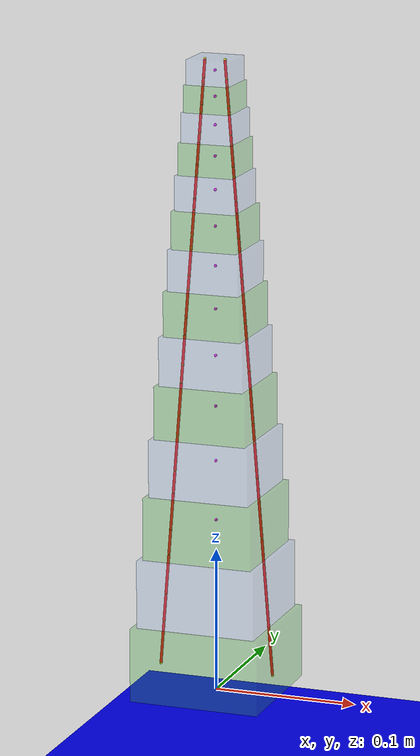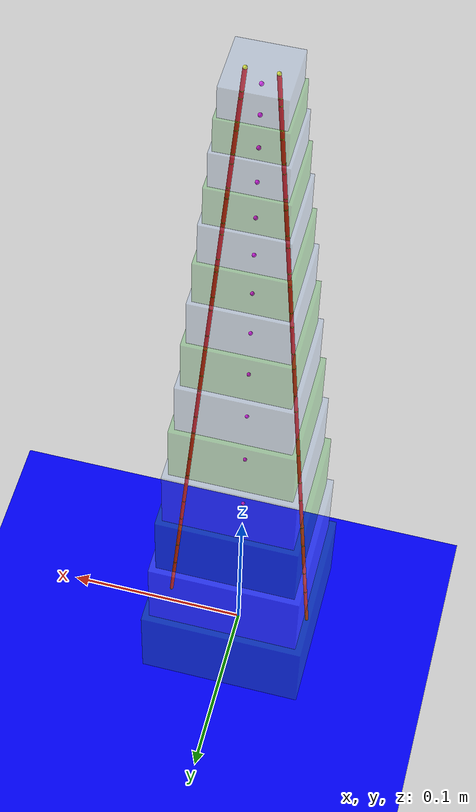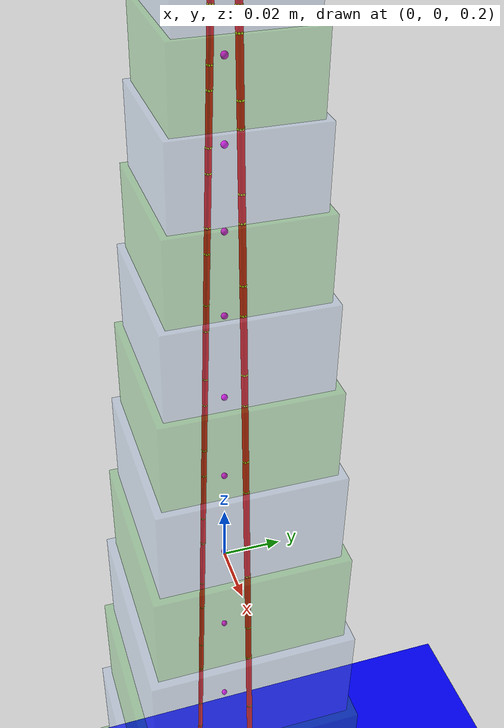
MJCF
<mujoco model="SpiRob demo scene">
  <!-- Rendering-only wrapper: the identified model plus lights, a skybox and a
       ground material, so scripts/render_demo.py produces a readable video
       without touching the tracked model itself. -->
  <include file="spirob_13seg_identified.xml"/>

  <visual>
    <headlight diffuse="0.55 0.55 0.55" ambient="0.35 0.35 0.35" specular="0.15 0.15 0.15"/>
    <rgba haze="0.15 0.25 0.35 1"/>
    <global offwidth="1920" offheight="1080"/>
    <quality shadowsize="4096"/>
  </visual>

  <asset>
    <texture type="skybox" builtin="gradient" rgb1="0.35 0.45 0.58" rgb2="0.08 0.10 0.14"
             width="512" height="3072"/>
  </asset>

  <worldbody>
    <light pos="0.3 -0.6 0.9" dir="-0.3 0.6 -0.9" directional="true"
           diffuse="0.7 0.7 0.7" specular="0.2 0.2 0.2"/>
  </worldbody>
</mujoco>

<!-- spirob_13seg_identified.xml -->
<mujoco model="Spirob">
  <compiler angle="radian"/>

  <option timestep="0.004" impratio="15" cone="elliptic" iterations="20"/>

  <default>
    <joint solreflimit="0.02 0.5" stiffness="0.01" limited="true" range="-24.4496 24.4496" armature="0.01" damping="0.2"/>
  </default>

  <worldbody>
    <body name="base">
      <geom size="2 2 0.1" pos="0 0 -0.053" type="plane" rgba="0 0 1 0.6"/>
      <body name="seg_13">
        <geom name="g_13" size="0.0458798 0.0458798 0.0258984" pos="0 0 0.0258984" type="box" density="1100" rgba="0.2 0.7 0.2 0.3"/>
        <site name="site_imu_13" pos="0 0 0.0258984" size="0.001" rgba="1 0 1 1"/>
        <site name="site_in_13_0" pos="0.0408634 0 0.0142884" size="0.001" rgba="1 1 0 1"/>
        <site name="site_out_13_0" pos="0.0384285 0 0.0448985" size="0.001" rgba="1 1 0 1"/>
        <site name="site_in_13_1" pos="-0.0408634 0 0.0142884" size="0.001" rgba="1 1 0 1"/>
        <site name="site_out_13_1" pos="-0.0384285 0 0.0448985" size="0.001" rgba="1 1 0 1"/>
        <body name="seg_12" pos="0 0 0.0517968">
          <joint name="j_12" pos="0 0 0" axis="0 1 0" solreflimit="0.00729252 4.21066" solimplimit="0.98724 0.968035 0.01336" solreffriction="0.0828541 2.71638" solimpfriction="0.736528 0.919823 0.00627369" stiffness="0.1" range="-0.513643 0.513643" armature="0.0359926" damping="0.0001" frictionloss="9.85227"/>
          <geom name="g_12" size="0.0420991 0.0420991 0.0237643" pos="0 0 0.0237643" type="box" density="1100" rgba="0.6 0.75 0.95 0.3"/>
          <site name="site_imu_12" pos="0 0 0.0237643" size="0.001" rgba="1 0 1 1"/>
          <site name="site_in_12_0" pos="0.0368547 0 0.0128867" size="0.001" rgba="1 1 0 1"/>
          <site name="site_out_12_0" pos="0.0345931 0 0.0413187" size="0.001" rgba="1 1 0 1"/>
          <site name="site_in_12_1" pos="-0.0368547 0 0.0128867" size="0.001" rgba="1 1 0 1"/>
          <site name="site_out_12_1" pos="-0.0345931 0 0.0413187" size="0.001" rgba="1 1 0 1"/>
          <body name="seg_11" pos="0 0 0.0475285">
            <joint name="j_11" pos="0 0 0" axis="0 1 0" solreflimit="0.00729252 4.21066" solimplimit="0.98724 0.968035 0.01336" solreffriction="0.0828541 2.71638" solimpfriction="0.736528 0.919823 0.00627369" stiffness="0.1" range="-0.513643 0.513643" armature="0.0359926" damping="2.56115" frictionloss="9.41908"/>
            <geom name="g_11" size="0.03863 0.03863 0.021806" pos="0 0 0.021806" type="box" density="1100" rgba="0.2 0.7 0.2 0.3"/>
            <site name="site_imu_11" pos="0 0 0.021806" size="0.001" rgba="1 0 1 1"/>
            <site name="site_in_11_0" pos="0.0331764 0 0.0116005" size="0.001" rgba="1 1 0 1"/>
            <site name="site_out_11_0" pos="0.0310737 0 0.038034" size="0.001" rgba="1 1 0 1"/>
            <site name="site_in_11_1" pos="-0.0331764 0 0.0116005" size="0.001" rgba="1 1 0 1"/>
            <site name="site_out_11_1" pos="-0.0310737 0 0.038034" size="0.001" rgba="1 1 0 1"/>
            <body name="seg_10" pos="0 0 0.043612">
              <joint name="j_10" pos="0 0 0" axis="0 1 0" solreflimit="0.00729252 4.21066" solimplimit="0.98724 0.968035 0.01336" solreffriction="0.0828541 2.71638" solimpfriction="0.736528 0.919823 0.00627369" stiffness="0.1" range="-0.513643 0.513643" armature="0.0359926" damping="7.82516" frictionloss="9.07456"/>
              <geom name="g_10" size="0.0354467 0.0354467 0.0200091" pos="0 0 0.0200091" type="box" density="1100" rgba="0.6 0.75 0.95 0.3"/>
              <site name="site_imu_10" pos="0 0 0.0200091" size="0.001" rgba="1 0 1 1"/>
              <site name="site_in_10_0" pos="0.0298011 0 0.0104203" size="0.001" rgba="1 1 0 1"/>
              <site name="site_out_10_0" pos="0.0278443 0 0.0350199" size="0.001" rgba="1 1 0 1"/>
              <site name="site_in_10_1" pos="-0.0298011 0 0.0104203" size="0.001" rgba="1 1 0 1"/>
              <site name="site_out_10_1" pos="-0.0278443 0 0.0350199" size="0.001" rgba="1 1 0 1"/>
              <body name="seg_9" pos="0 0 0.0400182">
                <joint name="j_9" pos="0 0 0" axis="0 1 0" solreflimit="0.00729252 4.21066" solimplimit="0.98724 0.968035 0.01336" solreffriction="0.0828541 2.71638" solimpfriction="0.736528 0.919823 0.00627369" stiffness="0.1" range="-0.513643 0.513643" armature="0.0359926" damping="15.8495" frictionloss="8.83241"/>
                <geom name="g_9" size="0.0325258 0.0325258 0.0183603" pos="0 0 0.0183603" type="box" density="1100" rgba="0.2 0.7 0.2 0.3"/>
                <site name="site_imu_9" pos="0 0 0.0183603" size="0.001" rgba="1 0 1 1"/>
                <site name="site_in_9_0" pos="0.026704 0 0.00933739" size="0.001" rgba="1 1 0 1"/>
                <site name="site_out_9_0" pos="0.0248811 0 0.0322541" size="0.001" rgba="1 1 0 1"/>
                <site name="site_in_9_1" pos="-0.026704 0 0.00933739" size="0.001" rgba="1 1 0 1"/>
                <site name="site_out_9_1" pos="-0.0248811 0 0.0322541" size="0.001" rgba="1 1 0 1"/>
                <body name="seg_8" pos="0 0 0.0367205">
                  <joint name="j_8" pos="0 0 0" axis="0 1 0" solreflimit="0.00729252 4.21066" solimplimit="0.98724 0.968035 0.01336" solreffriction="0.0828541 2.71638" solimpfriction="0.736528 0.919823 0.00627369" stiffness="0.1" range="-0.513643 0.513643" armature="0.0359926" damping="26.7625" frictionloss="8.70632"/>
                  <geom name="g_8" size="0.0298455 0.0298455 0.0168473" pos="0 0 0.0168473" type="box" density="1100" rgba="0.6 0.75 0.95 0.3"/>
                  <site name="site_imu_8" pos="0 0 0.0168473" size="0.001" rgba="1 0 1 1"/>
                  <site name="site_in_8_0" pos="0.0238621 0 0.00834368" size="0.001" rgba="1 1 0 1"/>
                  <site name="site_out_8_0" pos="0.022162 0 0.0297163" size="0.001" rgba="1 1 0 1"/>
                  <site name="site_in_8_1" pos="-0.0238621 0 0.00834368" size="0.001" rgba="1 1 0 1"/>
                  <site name="site_out_8_1" pos="-0.022162 0 0.0297163" size="0.001" rgba="1 1 0 1"/>
                  <body name="seg_7" pos="0 0 0.0336946">
                    <joint name="j_7" pos="0 0 0" axis="0 1 0" solreflimit="0.00729252 4.21066" solimplimit="0.98724 0.968035 0.01336" solreffriction="0.0828541 2.71638" solimpfriction="0.736528 0.919823 0.00627369" stiffness="0.1" range="-0.513643 0.513643" armature="0.0359926" damping="40.6923" frictionloss="8.70996"/>
                    <geom name="g_7" size="0.0273861 0.0273861 0.015459" pos="0 0 0.015459" type="box" density="1100" rgba="0.2 0.7 0.2 0.3"/>
                    <site name="site_imu_7" pos="0 0 0.015459" size="0.001" rgba="1 0 1 1"/>
                    <site name="site_in_7_0" pos="0.0212543 0 0.00743186" size="0.001" rgba="1 1 0 1"/>
                    <site name="site_out_7_0" pos="0.019667 0 0.0273876" size="0.001" rgba="1 1 0 1"/>
                    <site name="site_in_7_1" pos="-0.0212543 0 0.00743186" size="0.001" rgba="1 1 0 1"/>
                    <site name="site_out_7_1" pos="-0.019667 0 0.0273876" size="0.001" rgba="1 1 0 1"/>
                    <body name="seg_6" pos="0 0 0.030918">
                      <joint name="j_6" pos="0 0 0" axis="0 1 0" solreflimit="0.00729252 4.21066" solimplimit="0.98724 0.968035 0.01336" solreffriction="0.0828541 2.71638" solimpfriction="0.736528 0.919823 0.00627369" stiffness="0.1" range="-0.513643 0.513643" armature="0.0359926" damping="57.7671" frictionloss="8.85703"/>
                      <geom name="g_6" size="0.0251294 0.0251294 0.0141851" pos="0 0 0.0141851" type="box" density="1100" rgba="0.6 0.75 0.95 0.3"/>
                      <site name="site_imu_6" pos="0 0 0.0141851" size="0.001" rgba="1 0 1 1"/>
                      <site name="site_in_6_0" pos="0.0188615 0 0.00659517" size="0.001" rgba="1 1 0 1"/>
                      <site name="site_out_6_0" pos="0.0173775 0 0.0252508" size="0.001" rgba="1 1 0 1"/>
                      <site name="site_in_6_1" pos="-0.0188615 0 0.00659517" size="0.001" rgba="1 1 0 1"/>
                      <site name="site_out_6_1" pos="-0.0173775 0 0.0252508" size="0.001" rgba="1 1 0 1"/>
                      <body name="seg_5" pos="0 0 0.0283703">
                        <joint name="j_5" pos="0 0 0" axis="0 1 0" solreflimit="0.00729252 4.21066" solimplimit="0.98724 0.968035 0.01336" solreffriction="0.0828541 2.71638" solimpfriction="0.736528 0.919823 0.00627369" stiffness="0.1" range="-0.513643 0.513643" armature="0.0359926" damping="78.1152" frictionloss="9.16121"/>
                        <geom name="g_5" size="0.0230586 0.0230586 0.0130162" pos="0 0 0.0130162" type="box" density="1100" rgba="0.2 0.7 0.2 0.3"/>
                        <site name="site_imu_5" pos="0 0 0.0130162" size="0.001" rgba="1 0 1 1"/>
                        <site name="site_in_5_0" pos="0.0166659 0 0.00582743" size="0.001" rgba="1 1 0 1"/>
                        <site name="site_out_5_0" pos="0.0152768 0 0.0232901" size="0.001" rgba="1 1 0 1"/>
                        <site name="site_in_5_1" pos="-0.0166659 0 0.00582743" size="0.001" rgba="1 1 0 1"/>
                        <site name="site_out_5_1" pos="-0.0152768 0 0.0232901" size="0.001" rgba="1 1 0 1"/>
                        <body name="seg_4" pos="0 0 0.0260324">
                          <joint name="j_4" pos="0 0 0" axis="0 1 0" solreflimit="0.00729252 4.21066" solimplimit="0.98724 0.968035 0.01336" solreffriction="0.0828541 2.71638" solimpfriction="0.736528 0.919823 0.00627369" stiffness="0.1" range="-0.513643 0.513643" armature="0.0359926" damping="101.865" frictionloss="9.63618"/>
                          <geom name="g_4" size="0.0211585 0.0211585 0.0119436" pos="0 0 0.0119436" type="box" density="1100" rgba="0.6 0.75 0.95 0.3"/>
                          <site name="site_imu_4" pos="0 0 0.0119436" size="0.001" rgba="1 0 1 1"/>
                          <site name="site_in_4_0" pos="0.0146511 0 0.00512296" size="0.001" rgba="1 1 0 1"/>
                          <site name="site_out_4_0" pos="0.0133491 0 0.021491" size="0.001" rgba="1 1 0 1"/>
                          <site name="site_in_4_1" pos="-0.0146511 0 0.00512296" size="0.001" rgba="1 1 0 1"/>
                          <site name="site_out_4_1" pos="-0.0133491 0 0.021491" size="0.001" rgba="1 1 0 1"/>
                          <body name="seg_3" pos="0 0 0.0238873">
                            <joint name="j_3" pos="0 0 0" axis="0 1 0" solreflimit="0.00729252 4.21066" solimplimit="0.98724 0.968035 0.01336" solreffriction="0.0828541 2.71638" solimpfriction="0.736528 0.919823 0.00627369" stiffness="0.1" range="-0.513643 0.513643" armature="0.0359926" damping="129.144" frictionloss="10"/>
                            <geom name="g_3" size="0.019415 0.019415 0.0109594" pos="0 0 0.0109594" type="box" density="1100" rgba="0.2 0.7 0.2 0.3"/>
                            <site name="site_imu_3" pos="0 0 0.0109594" size="0.001" rgba="1 0 1 1"/>
                            <site name="site_in_3_0" pos="0.0128024 0 0.00447653" size="0.001" rgba="1 1 0 1"/>
                            <site name="site_out_3_0" pos="0.0115803 0 0.0198401" size="0.001" rgba="1 1 0 1"/>
                            <site name="site_in_3_1" pos="-0.0128024 0 0.00447653" size="0.001" rgba="1 1 0 1"/>
                            <site name="site_out_3_1" pos="-0.0115803 0 0.0198401" size="0.001" rgba="1 1 0 1"/>
                            <body name="seg_2" pos="0 0 0.0219189">
                              <joint name="j_2" pos="0 0 0" axis="0 1 0" solreflimit="0.00729252 4.21066" solimplimit="0.98724 0.968035 0.01336" solreffriction="0.0828541 2.71638" solimpfriction="0.736528 0.919823 0.00627369" stiffness="0.1" range="-0.513643 0.513643" armature="0.0359926" damping="160.082" frictionloss="10"/>
                              <geom name="g_2" size="0.0178151 0.0178151 0.0100563" pos="0 0 0.0100563" type="box" density="1100" rgba="0.6 0.75 0.95 0.3"/>
                              <site name="site_imu_2" pos="0 0 0.0100563" size="0.001" rgba="1 0 1 1"/>
                              <site name="site_in_2_0" pos="0.0111061 0 0.00388338" size="0.001" rgba="1 1 0 1"/>
                              <site name="site_out_2_0" pos="0.00995728 0 0.0183252" size="0.001" rgba="1 1 0 1"/>
                              <site name="site_in_2_1" pos="-0.0111061 0 0.00388338" size="0.001" rgba="1 1 0 1"/>
                              <site name="site_out_2_1" pos="-0.00995728 0 0.0183252" size="0.001" rgba="1 1 0 1"/>
                              <body name="seg_1" pos="0 0 0.0201127">
                                <joint name="j_1" pos="0 0 0" axis="0 1 0" solreflimit="0.00729252 4.21066" solimplimit="0.98724 0.968035 0.01336" solreffriction="0.0828541 2.71638" solimpfriction="0.736528 0.919823 0.00627369" stiffness="0.1" range="-0.513643 0.513643" armature="0.0359926" damping="194.805" frictionloss="10"/>
                                <geom name="g_1" size="0.0163471 0.0163471 0.00922765" pos="0 0 0.00922765" type="box" density="1100" rgba="0.2 0.7 0.2 0.3"/>
                                <site name="site_imu_1" pos="0 0 0.00922765" size="0.001" rgba="1 0 1 1"/>
                                <site name="site_in_1_0" pos="0.00954949 0 0.0033391" size="0.001" rgba="1 1 0 1"/>
                                <site name="site_out_1_0" pos="0.00846798 0 0.0169352" size="0.001" rgba="1 1 0 1"/>
                                <site name="site_in_1_1" pos="-0.00954949 0 0.0033391" size="0.001" rgba="1 1 0 1"/>
                                <site name="site_out_1_1" pos="-0.00846798 0 0.0169352" size="0.001" rgba="1 1 0 1"/>
                                <body name="seg_0" pos="0 0 0.0184553">
                                  <joint name="j_0" pos="0 0 0" axis="0 1 0" solreflimit="0.00729252 4.21066" solimplimit="0.98724 0.968035 0.01336" solreffriction="0.0828541 2.71638" solimpfriction="0.736528 0.919823 0.00627369" stiffness="0.1" range="-0.513643 0.513643" armature="0.0359926" damping="200.1" frictionloss="10"/>
                                  <geom name="g_0" size="0.015 0.015 0.00846725" pos="0 0 0.00846725" type="box" density="1100" rgba="0.6 0.75 0.95 0.3"/>
                                  <site name="site_imu_0" pos="0 0 0.00846725" size="0.001" rgba="1 0 1 1"/>
                                  <site name="site_in_0_0" pos="0.00812118 0 0.00283968" size="0.001" rgba="1 1 0 1"/>
                                  <site name="site_out_0_0" pos="0.0071014 0 0.0156597" size="0.001" rgba="1 1 0 1"/>
                                  <site name="site_in_0_1" pos="-0.00812118 0 0.00283968" size="0.001" rgba="1 1 0 1"/>
                                  <site name="site_out_0_1" pos="-0.0071014 0 0.0156597" size="0.001" rgba="1 1 0 1"/>
                                </body>
                              </body>
                            </body>
                          </body>
                        </body>
                      </body>
                    </body>
                  </body>
                </body>
              </body>
            </body>
          </body>
        </body>
      </body>
    </body>
  </worldbody>

  <contact>
    <exclude body1="seg_13" body2="seg_12"/>
  </contact>

  <tendon>
    <spatial name="tendon_0" stiffness="20.8846" damping="0.048306" frictionloss="0.0165141" width="0.001" rgba="1 0 0 1">
      <site site="site_in_13_0"/>
      <site site="site_out_13_0"/>
      <site site="site_in_12_0"/>
      <site site="site_out_12_0"/>
      <site site="site_in_11_0"/>
      <site site="site_out_11_0"/>
      <site site="site_in_10_0"/>
      <site site="site_out_10_0"/>
      <site site="site_in_9_0"/>
      <site site="site_out_9_0"/>
      <site site="site_in_8_0"/>
      <site site="site_out_8_0"/>
      <site site="site_in_7_0"/>
      <site site="site_out_7_0"/>
      <site site="site_in_6_0"/>
      <site site="site_out_6_0"/>
      <site site="site_in_5_0"/>
      <site site="site_out_5_0"/>
      <site site="site_in_4_0"/>
      <site site="site_out_4_0"/>
      <site site="site_in_3_0"/>
      <site site="site_out_3_0"/>
      <site site="site_in_2_0"/>
      <site site="site_out_2_0"/>
      <site site="site_in_1_0"/>
      <site site="site_out_1_0"/>
      <site site="site_in_0_0"/>
      <site site="site_out_0_0"/>
    </spatial>
    <spatial name="tendon_1" stiffness="20.8846" damping="0.048306" frictionloss="0.0165141" width="0.001" rgba="1 0 0 1">
      <site site="site_in_13_1"/>
      <site site="site_out_13_1"/>
      <site site="site_in_12_1"/>
      <site site="site_out_12_1"/>
      <site site="site_in_11_1"/>
      <site site="site_out_11_1"/>
      <site site="site_in_10_1"/>
      <site site="site_out_10_1"/>
      <site site="site_in_9_1"/>
      <site site="site_out_9_1"/>
      <site site="site_in_8_1"/>
      <site site="site_out_8_1"/>
      <site site="site_in_7_1"/>
      <site site="site_out_7_1"/>
      <site site="site_in_6_1"/>
      <site site="site_out_6_1"/>
      <site site="site_in_5_1"/>
      <site site="site_out_5_1"/>
      <site site="site_in_4_1"/>
      <site site="site_out_4_1"/>
      <site site="site_in_3_1"/>
      <site site="site_out_3_1"/>
      <site site="site_in_2_1"/>
      <site site="site_out_2_1"/>
      <site site="site_in_1_1"/>
      <site site="site_out_1_1"/>
      <site site="site_in_0_1"/>
      <site site="site_out_0_1"/>
    </spatial>
  </tendon>

  <actuator>
    <general name="tendon_act_0" tendon="tendon_0" ctrlrange="-150 0" forcerange="-200 200"/>
    <general name="tendon_act_1" tendon="tendon_1" ctrlrange="-150 0" forcerange="-200 200"/>
  </actuator>

  <sensor>

    <tendonactuatorfrc tendon="tendon_0" name="tendonfrc_0"/>

    <tendonpos tendon="tendon_0" name="tendonpos_0"/>

    <tendonvel tendon="tendon_0" name="tendonvel_0"/>

    <tendonactuatorfrc tendon="tendon_1" name="tendonfrc_1"/>

    <tendonpos tendon="tendon_1" name="tendonpos_1"/>

    <tendonvel tendon="tendon_1" name="tendonvel_1"/>
    <jointpos joint="j_0" name="jointpos_0"/>
    <jointvel joint="j_0" name="jointvel_0"/>
    <jointpos joint="j_1" name="jointpos_1"/>
    <jointvel joint="j_1" name="jointvel_1"/>
    <jointpos joint="j_2" name="jointpos_2"/>
    <jointvel joint="j_2" name="jointvel_2"/>
    <jointpos joint="j_3" name="jointpos_3"/>
    <jointvel joint="j_3" name="jointvel_3"/>
    <jointpos joint="j_4" name="jointpos_4"/>
    <jointvel joint="j_4" name="jointvel_4"/>
    <jointpos joint="j_5" name="jointpos_5"/>
    <jointvel joint="j_5" name="jointvel_5"/>
    <jointpos joint="j_6" name="jointpos_6"/>
    <jointvel joint="j_6" name="jointvel_6"/>
    <jointpos joint="j_7" name="jointpos_7"/>
    <jointvel joint="j_7" name="jointvel_7"/>
    <jointpos joint="j_8" name="jointpos_8"/>
    <jointvel joint="j_8" name="jointvel_8"/>
    <jointpos joint="j_9" name="jointpos_9"/>
    <jointvel joint="j_9" name="jointvel_9"/>
    <jointpos joint="j_10" name="jointpos_10"/>
    <jointvel joint="j_10" name="jointvel_10"/>
    <jointpos joint="j_11" name="jointpos_11"/>
    <jointvel joint="j_11" name="jointvel_11"/>
    <jointpos joint="j_12" name="jointpos_12"/>
    <jointvel joint="j_12" name="jointvel_12"/>
    <gyro site="site_imu_0" name="gyro_0"/>
    <accelerometer site="site_imu_0" name="acc_0"/>
    <gyro site="site_imu_1" name="gyro_1"/>
    <accelerometer site="site_imu_1" name="acc_1"/>
    <gyro site="site_imu_2" name="gyro_2"/>
    <accelerometer site="site_imu_2" name="acc_2"/>
    <gyro site="site_imu_3" name="gyro_3"/>
    <accelerometer site="site_imu_3" name="acc_3"/>
    <gyro site="site_imu_4" name="gyro_4"/>
    <accelerometer site="site_imu_4" name="acc_4"/>
    <gyro site="site_imu_5" name="gyro_5"/>
    <accelerometer site="site_imu_5" name="acc_5"/>
    <gyro site="site_imu_6" name="gyro_6"/>
    <accelerometer site="site_imu_6" name="acc_6"/>
    <gyro site="site_imu_7" name="gyro_7"/>
    <accelerometer site="site_imu_7" name="acc_7"/>
    <gyro site="site_imu_8" name="gyro_8"/>
    <accelerometer site="site_imu_8" name="acc_8"/>
    <gyro site="site_imu_9" name="gyro_9"/>
    <accelerometer site="site_imu_9" name="acc_9"/>
    <gyro site="site_imu_10" name="gyro_10"/>
    <accelerometer site="site_imu_10" name="acc_10"/>
    <gyro site="site_imu_11" name="gyro_11"/>
    <accelerometer site="site_imu_11" name="acc_11"/>
    <gyro site="site_imu_12" name="gyro_12"/>
    <accelerometer site="site_imu_12" name="acc_12"/>
    <gyro site="site_imu_13" name="gyro_13"/>
    <accelerometer site="site_imu_13" name="acc_13"/>
  </sensor>
</mujoco>
